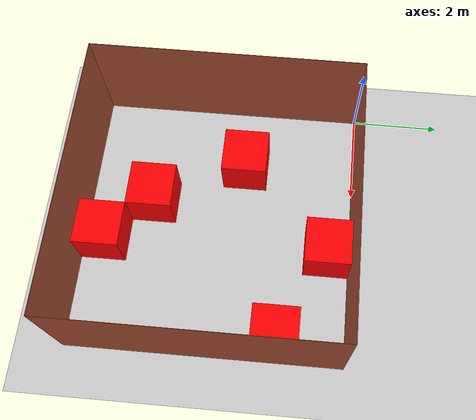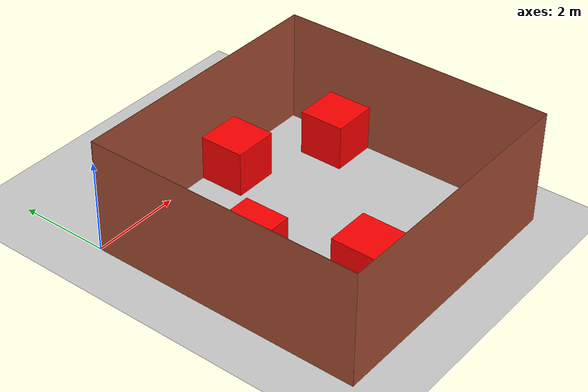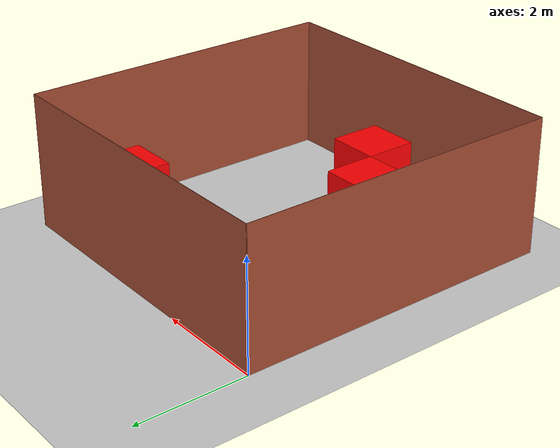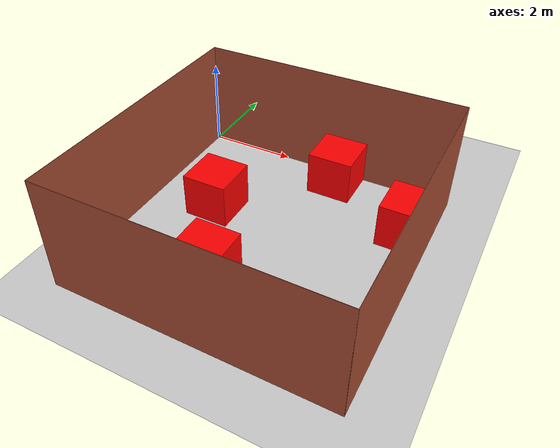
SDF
<sdf version="1.6">
 <world name="default">
  <light name="sun" type="directional">
   <pose>0 0 10 0 -0 0</pose>
   <diffuse>0.8 0.8 0.8 1</diffuse>
   <specular>0.2 0.2 0.2 1</specular>
   <attenuation>
    <range>1000</range>
    <constant>0.9</constant>
    <linear>0.01</linear>
    <quadratic>0.001</quadratic>
   </attenuation>
   <direction>-0.5 0.1 -0.9</direction>
  </light>
  <model name="ground_plane">
   <static>1</static>
   <link name="link">
    <collision name="collision">
     <geometry><plane><normal>0 0 1</normal><size>100 100</size></plane></geometry>
     <surface><friction><ode><mu>100</mu><mu2>50</mu2></ode></friction></surface>
    </collision>
    <visual name="visual">
     <cast_shadows>0</cast_shadows>
     <geometry><plane><normal>0 0 1</normal><size>100 100</size></plane></geometry>
     <material>
      <script><uri>file://media/materials/scripts/gazebo.material</uri><name>Gazebo/Grey</name></script>
     </material>
    </visual>
   </link>
  </model>
  <gravity>0 0 -9.8</gravity>
  <magnetic_field>6e-06 2.3e-05 -4.2e-05</magnetic_field>
  <atmosphere type="adiabatic"/>
  <physics name="default_physics" default="0" type="ode">
   <max_step_size>0.001</max_step_size>
   <real_time_factor>1</real_time_factor>
   <real_time_update_rate>1000</real_time_update_rate>
  </physics>
  <scene><ambient>0.4 0.4 0.4 1</ambient><background>0.7 0.7 0.7 1</background><shadows>1</shadows></scene>
  <audio><device>default</device></audio>
  <spherical_coordinates>
   <surface_model>EARTH_WGS84</surface_model>
   <latitude_deg>0</latitude_deg>
   <longitude_deg>0</longitude_deg>
   <elevation>0</elevation>
   <heading_deg>0</heading_deg>
  </spherical_coordinates>
  <model name="grid_6">
   <pose>3 -3 0 0 -0 0</pose>
   <link name="Wall_10">
    <collision name="Wall_10_Collision">
     <geometry><box><size>6.01 0.01 2.5</size></box></geometry>
     <pose>0 0 1.25 0 -0 0</pose>
    </collision>
    <visual name="Wall_10_Visual">
     <pose>0 0 1.25 0 -0 0</pose>
     <geometry><box><size>6.01 0.01 2.5</size></box></geometry>
     <material>
      <script><uri>file://media/materials/scripts/gazebo.material</uri><name>Gazebo/Bricks</name></script>
      <ambient>1 1 1 1</ambient>
     </material>
     <meta><layer>0</layer></meta>
    </visual>
    <pose>-0 -3 0 0 -0 0</pose>
   </link>
   <link name="Wall_4">
    <collision name="Wall_4_Collision">
     <geometry><box><size>6.01 0.01 2.5</size></box></geometry>
     <pose>0 0 1.25 0 -0 0</pose>
    </collision>
    <visual name="Wall_4_Visual">
     <pose>0 0 1.25 0 -0 0</pose>
     <geometry><box><size>6.01 0.01 2.5</size></box></geometry>
     <material>
      <script><uri>file://media/materials/scripts/gazebo.material</uri><name>Gazebo/Bricks</name></script>
      <ambient>1 1 1 1</ambient>
     </material>
     <meta><layer>0</layer></meta>
    </visual>
    <pose>-3 0 0 0 -0 -1.5708</pose>
   </link>
   <link name="Wall_6">
    <collision name="Wall_6_Collision">
     <geometry><box><size>6.01 0.01 2.5</size></box></geometry>
     <pose>0 0 1.25 0 -0 0</pose>
    </collision>
    <visual name="Wall_6_Visual">
     <pose>0 0 1.25 0 -0 0</pose>
     <geometry><box><size>6.01 0.01 2.5</size></box></geometry>
     <material>
      <script><uri>file://media/materials/scripts/gazebo.material</uri><name>Gazebo/Bricks</name></script>
      <ambient>1 1 1 1</ambient>
     </material>
     <meta><layer>0</layer></meta>
    </visual>
    <pose>-0 3 0 0 -0 0</pose>
   </link>
   <link name="Wall_8">
    <collision name="Wall_8_Collision">
     <geometry><box><size>6.01 0.01 2.5</size></box></geometry>
     <pose>0 0 1.25 0 -0 0</pose>
    </collision>
    <visual name="Wall_8_Visual">
     <pose>0 0 1.25 0 -0 0</pose>
     <geometry><box><size>6.01 0.01 2.5</size></box></geometry>
     <material>
      <script><uri>file://media/materials/scripts/gazebo.material</uri><name>Gazebo/Bricks</name></script>
      <ambient>1 1 1 1</ambient>
     </material>
     <meta><layer>0</layer></meta>
    </visual>
    <pose>3 0 0 0 -0 -1.5708</pose>
   </link>
   <static>1</static>
  </model>
  <model name="Obstacle">
   <link name="link">
    <inertial>
     <mass>1</mass>
     <inertia>
      <ixx>0.166667</ixx>
      <ixy>0</ixy>
      <ixz>0</ixz>
      <iyy>0.166667</iyy>
      <iyz>0</iyz>
      <izz>0.166667</izz>
     </inertia>
    </inertial>
    <visual name="visual">
     <geometry><box><size>1 1 1</size></box></geometry>
     <material>
      <script><name>Gazebo/Grey</name><uri>file://media/materials/scripts/gazebo.material</uri></script>
      <ambient>1 2.77556e-17 0 0</ambient>
      <shader type="vertex"><normal_map>__default__</normal_map></shader>
      <diffuse>0.7 0.7 0.7 1</diffuse>
      <specular>0.01 0.01 0.01 1</specular>
      <emissive>0 0 0 1</emissive>
     </material>
    </visual>
    <collision name="collision">
     <geometry><box><size>1 1 1</size></box></geometry>
     <surface>
      <friction>
       <ode><mu>1</mu><mu2>1</mu2><fdir1>0 0 0</fdir1><slip1>0</slip1><slip2>0</slip2></ode>
       <torsional>
        <coefficient>1</coefficient>
        <patch_radius>0</patch_radius>
        <surface_radius>0</surface_radius>
        <use_patch_radius>1</use_patch_radius>
        <ode><slip>0</slip></ode>
       </torsional>
      </friction>
      <bounce><restitution_coefficient>0</restitution_coefficient><threshold>1e+06</threshold></bounce>
      <contact>
       <collide_without_contact>0</collide_without_contact>
       <collide_without_contact_bitmask>1</collide_without_contact_bitmask>
       <collide_bitmask>1</collide_bitmask>
       <ode>
        <soft_cfm>0</soft_cfm>
        <soft_erp>0.2</soft_erp>
        <kp>1e+13</kp>
        <kd>1</kd>
        <max_vel>0.01</max_vel>
        <min_depth>0</min_depth>
       </ode>
       <bullet>
        <split_impulse>1</split_impulse>
        <split_impulse_penetration_threshold>-0.01</split_impulse_penetration_threshold>
        <soft_cfm>0</soft_cfm>
        <soft_erp>0.2</soft_erp>
        <kp>1e+13</kp>
        <kd>1</kd>
       </bullet>
      </contact>
     </surface>
    </collision>
   </link>
   <static>0</static>
   <pose>3.50004 -0.505018 0.499995 0 -1e-05 -2.7e-05</pose>
  </model>
  <model name="Obstacle_0">
   <link name="link">
    <inertial>
     <mass>1</mass>
     <inertia>
      <ixx>0.166667</ixx>
      <ixy>0</ixy>
      <ixz>0</ixz>
      <iyy>0.166667</iyy>
      <iyz>0</iyz>
      <izz>0.166667</izz>
     </inertia>
    </inertial>
    <visual name="visual">
     <geometry><box><size>1 1 1</size></box></geometry>
     <material>
      <script><name>Gazebo/Grey</name><uri>file://media/materials/scripts/gazebo.material</uri></script>
      <ambient>1 2.77556e-17 0 0</ambient>
      <shader type="vertex"><normal_map>__default__</normal_map></shader>
      <diffuse>0.7 0.7 0.7 1</diffuse>
      <specular>0.01 0.01 0.01 1</specular>
      <emissive>0 0 0 1</emissive>
     </material>
    </visual>
    <collision name="collision">
     <geometry><box><size>1 1 1</size></box></geometry>
     <surface>
      <friction>
       <ode><mu>1</mu><mu2>1</mu2><fdir1>0 0 0</fdir1><slip1>0</slip1><slip2>0</slip2></ode>
       <torsional>
        <coefficient>1</coefficient>
        <patch_radius>0</patch_radius>
        <surface_radius>0</surface_radius>
        <use_patch_radius>1</use_patch_radius>
        <ode><slip>0</slip></ode>
       </torsional>
      </friction>
      <bounce><restitution_coefficient>0</restitution_coefficient><threshold>1e+06</threshold></bounce>
      <contact>
       <collide_without_contact>0</collide_without_contact>
       <collide_without_contact_bitmask>1</collide_without_contact_bitmask>
       <collide_bitmask>1</collide_bitmask>
       <ode>
        <soft_cfm>0</soft_cfm>
        <soft_erp>0.2</soft_erp>
        <kp>1e+13</kp>
        <kd>1</kd>
        <max_vel>0.01</max_vel>
        <min_depth>0</min_depth>
       </ode>
       <bullet>
        <split_impulse>1</split_impulse>
        <split_impulse_penetration_threshold>-0.01</split_impulse_penetration_threshold>
        <soft_cfm>0</soft_cfm>
        <soft_erp>0.2</soft_erp>
        <kp>1e+13</kp>
        <kd>1</kd>
       </bullet>
      </contact>
     </surface>
    </collision>
   </link>
   <static>0</static>
   <pose>5.49499 -1.5 0.499995 0 -1e-05 9e-06</pose>
  </model>
  <model name="Obstacle_1">
   <link name="link">
    <inertial>
     <mass>1</mass>
     <inertia>
      <ixx>0.166667</ixx>
      <ixy>0</ixy>
      <ixz>0</ixz>
      <iyy>0.166667</iyy>
      <iyz>0</iyz>
      <izz>0.166667</izz>
     </inertia>
    </inertial>
    <visual name="visual">
     <geometry><box><size>1 1 1</size></box></geometry>
     <material>
      <script><name>Gazebo/Grey</name><uri>file://media/materials/scripts/gazebo.material</uri></script>
      <ambient>1 2.77556e-17 0 0</ambient>
      <shader type="vertex"><normal_map>__default__</normal_map></shader>
      <diffuse>0.7 0.7 0.7 1</diffuse>
      <specular>0.01 0.01 0.01 1</specular>
      <emissive>0 0 0 1</emissive>
     </material>
    </visual>
    <collision name="collision">
     <geometry><box><size>1 1 1</size></box></geometry>
     <surface>
      <friction>
       <ode><mu>1</mu><mu2>1</mu2><fdir1>0 0 0</fdir1><slip1>0</slip1><slip2>0</slip2></ode>
       <torsional>
        <coefficient>1</coefficient>
        <patch_radius>0</patch_radius>
        <surface_radius>0</surface_radius>
        <use_patch_radius>1</use_patch_radius>
        <ode><slip>0</slip></ode>
       </torsional>
      </friction>
      <bounce><restitution_coefficient>0</restitution_coefficient><threshold>1e+06</threshold></bounce>
      <contact>
       <collide_without_contact>0</collide_without_contact>
       <collide_without_contact_bitmask>1</collide_without_contact_bitmask>
       <collide_bitmask>1</collide_bitmask>
       <ode>
        <soft_cfm>0</soft_cfm>
        <soft_erp>0.2</soft_erp>
        <kp>1e+13</kp>
        <kd>1</kd>
        <max_vel>0.01</max_vel>
        <min_depth>0</min_depth>
       </ode>
       <bullet>
        <split_impulse>1</split_impulse>
        <split_impulse_penetration_threshold>-0.01</split_impulse_penetration_threshold>
        <soft_cfm>0</soft_cfm>
        <soft_erp>0.2</soft_erp>
        <kp>1e+13</kp>
        <kd>1</kd>
       </bullet>
      </contact>
     </surface>
    </collision>
   </link>
   <static>0</static>
   <pose>1.5 -2.5 0.499995 -1e-05 -0 -0</pose>
  </model>
  <model name="Obstacle_2">
   <link name="link">
    <inertial>
     <mass>1</mass>
     <inertia>
      <ixx>0.166667</ixx>
      <ixy>0</ixy>
      <ixz>0</ixz>
      <iyy>0.166667</iyy>
      <iyz>0</iyz>
      <izz>0.166667</izz>
     </inertia>
    </inertial>
    <visual name="visual">
     <geometry><box><size>1 1 1</size></box></geometry>
     <material>
      <script><name>Gazebo/Grey</name><uri>file://media/materials/scripts/gazebo.material</uri></script>
      <ambient>1 2.77556e-17 0 0</ambient>
      <shader type="vertex"><normal_map>__default__</normal_map></shader>
      <diffuse>0.7 0.7 0.7 1</diffuse>
      <specular>0.01 0.01 0.01 1</specular>
      <emissive>0 0 0 1</emissive>
     </material>
    </visual>
    <collision name="collision">
     <geometry><box><size>1 1 1</size></box></geometry>
     <surface>
      <friction>
       <ode><mu>1</mu><mu2>1</mu2><fdir1>0 0 0</fdir1><slip1>0</slip1><slip2>0</slip2></ode>
       <torsional>
        <coefficient>1</coefficient>
        <patch_radius>0</patch_radius>
        <surface_radius>0</surface_radius>
        <use_patch_radius>1</use_patch_radius>
        <ode><slip>0</slip></ode>
       </torsional>
      </friction>
      <bounce><restitution_coefficient>0</restitution_coefficient><threshold>1e+06</threshold></bounce>
      <contact>
       <collide_without_contact>0</collide_without_contact>
       <collide_without_contact_bitmask>1</collide_without_contact_bitmask>
       <collide_bitmask>1</collide_bitmask>
       <ode>
        <soft_cfm>0</soft_cfm>
        <soft_erp>0.2</soft_erp>
        <kp>1e+13</kp>
        <kd>1</kd>
        <max_vel>0.01</max_vel>
        <min_depth>0</min_depth>
       </ode>
       <bullet>
        <split_impulse>1</split_impulse>
        <split_impulse_penetration_threshold>-0.01</split_impulse_penetration_threshold>
        <soft_cfm>0</soft_cfm>
        <soft_erp>0.2</soft_erp>
        <kp>1e+13</kp>
        <kd>1</kd>
       </bullet>
      </contact>
     </surface>
    </collision>
   </link>
   <static>0</static>
   <pose>2.5 -4.5 0.5 0 0 -5e-06</pose>
  </model>
  <model name="Obstacle_3">
   <link name="link">
    <inertial>
     <mass>1</mass>
     <inertia>
      <ixx>0.166667</ixx>
      <ixy>0</ixy>
      <ixz>0</ixz>
      <iyy>0.166667</iyy>
      <iyz>0</iyz>
      <izz>0.166667</izz>
     </inertia>
    </inertial>
    <visual name="visual">
     <geometry><box><size>1 1 1</size></box></geometry>
     <material>
      <script><name>Gazebo/Grey</name><uri>file://media/materials/scripts/gazebo.material</uri></script>
      <ambient>1 2.77556e-17 0 0</ambient>
      <shader type="vertex"><normal_map>__default__</normal_map></shader>
      <diffuse>0.7 0.7 0.7 1</diffuse>
      <specular>0.01 0.01 0.01 1</specular>
      <emissive>0 0 0 1</emissive>
     </material>
    </visual>
    <collision name="collision">
     <geometry><box><size>1 1 1</size></box></geometry>
     <surface>
      <friction>
       <ode><mu>1</mu><mu2>1</mu2><fdir1>0 0 0</fdir1><slip1>0</slip1><slip2>0</slip2></ode>
       <torsional>
        <coefficient>1</coefficient>
        <patch_radius>0</patch_radius>
        <surface_radius>0</surface_radius>
        <use_patch_radius>1</use_patch_radius>
        <ode><slip>0</slip></ode>
       </torsional>
      </friction>
      <bounce><restitution_coefficient>0</restitution_coefficient><threshold>1e+06</threshold></bounce>
      <contact>
       <collide_without_contact>0</collide_without_contact>
       <collide_without_contact_bitmask>1</collide_without_contact_bitmask>
       <collide_bitmask>1</collide_bitmask>
       <ode>
        <soft_cfm>0</soft_cfm>
        <soft_erp>0.2</soft_erp>
        <kp>1e+13</kp>
        <kd>1</kd>
        <max_vel>0.01</max_vel>
        <min_depth>0</min_depth>
       </ode>
       <bullet>
        <split_impulse>1</split_impulse>
        <split_impulse_penetration_threshold>-0.01</split_impulse_penetration_threshold>
        <soft_cfm>0</soft_cfm>
        <soft_erp>0.2</soft_erp>
        <kp>1e+13</kp>
        <kd>1</kd>
       </bullet>
      </contact>
     </surface>
    </collision>
   </link>
   <static>0</static>
   <pose>3.5 -5.495 0.499995 1e-05 -0 0</pose>
  </model>
 </world>
</sdf>
